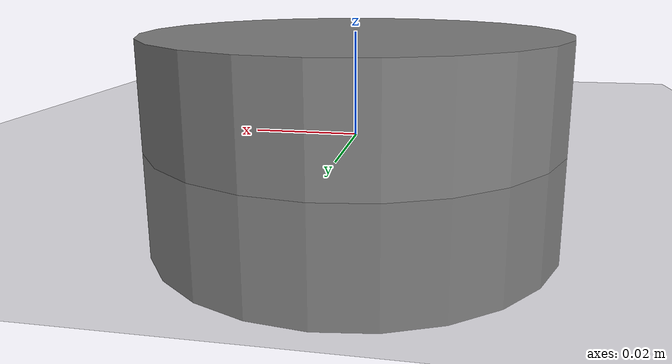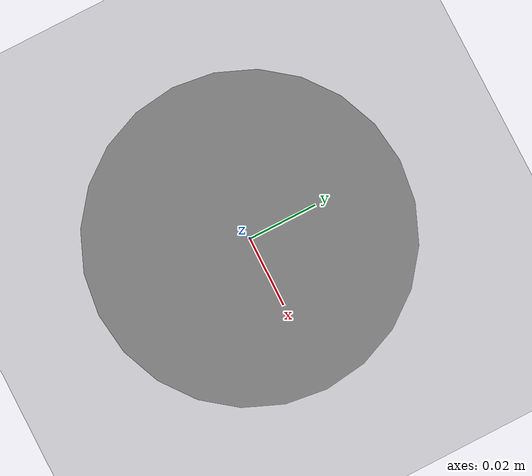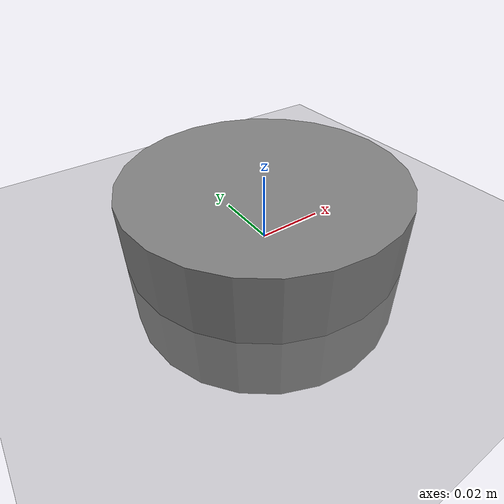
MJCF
<mujoco model="continuum_fk">

    <option gravity="0 0 0"/>

    <worldbody>

        <geom
            type="plane"
            size="2 2 0.1"/>

        <body name="base">

            <geom
                type="cylinder"
                size="0.04 0.02"/>

        </body>

        <!-- 所有mocap都直接挂world -->

        <body mocap="true" name="disk1">
            <geom type="sphere" size="0.015"/>
        </body>

        <body mocap="true" name="disk2">
            <geom type="sphere" size="0.015"/>
        </body>

        <body mocap="true" name="disk3">
            <geom type="sphere" size="0.015"/>
        </body>

        <body mocap="true" name="disk4">
            <geom type="sphere" size="0.015"/>
        </body>

        <body mocap="true" name="disk5">
            <geom type="sphere" size="0.015"/>
        </body>

        <body mocap="true" name="disk6">
            <geom type="sphere" size="0.015"/>
        </body>

        <body mocap="true" name="disk7">
            <geom type="sphere" size="0.015"
                  rgba="1 0 0 1"/>
        </body>

        <body mocap="true" name="disk8">
            <geom type="sphere" size="0.015"
                  rgba="1 0 0 1"/>
        </body>

        <body mocap="true" name="disk9">
            <geom type="sphere" size="0.015"
                  rgba="1 0 0 1"/>
        </body>

        <body mocap="true" name="disk10">
            <geom type="sphere" size="0.015"
                  rgba="1 0 0 1"/>
        </body>

        <body mocap="true" name="tip">
            <geom type="sphere"
                  size="0.02"
                  rgba="0 1 0 1"/>
        </body>

    </worldbody>

</mujoco>
